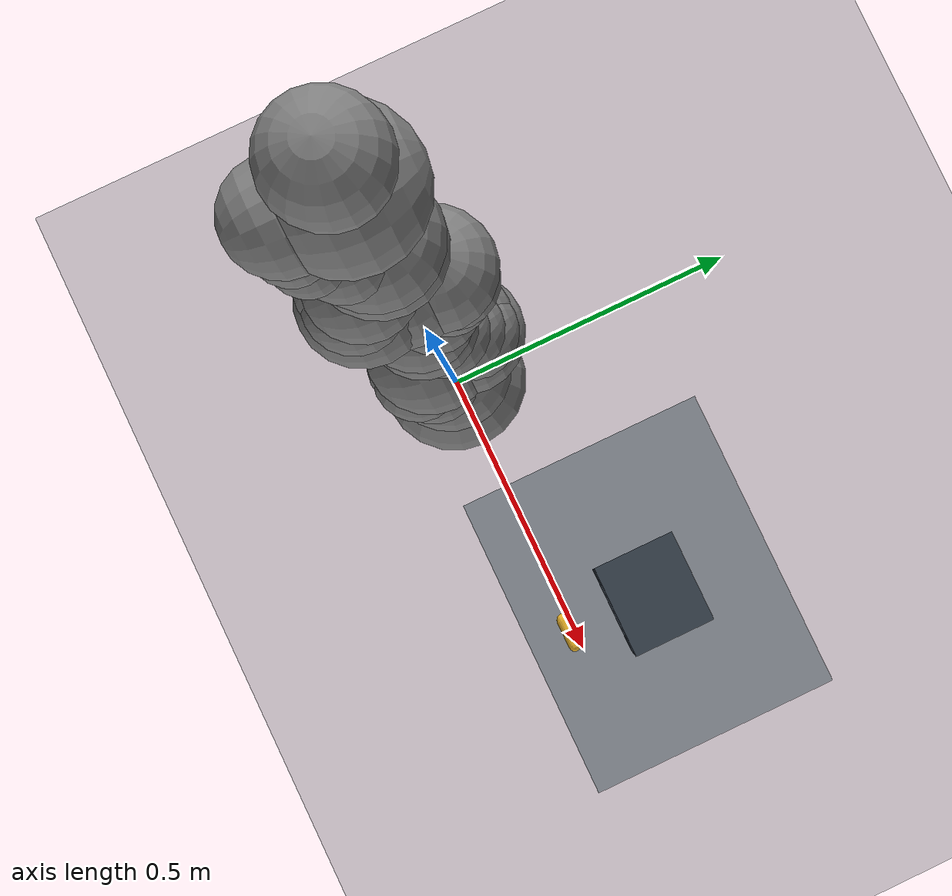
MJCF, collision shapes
<mujoco model="kuka_iiwa_14_window">
  <include file="iiwa14.xml" />
  <visual>
    <global offwidth="800" offheight="600" />
    <headlight diffuse="0.75 0.75 0.75" ambient="0.35 0.35 0.35" specular="0 0 0" />
  </visual>
  <worldbody>
    <light pos="0.35 -0.2 1.45" dir="0.2 0.1 -1" directional="true" />
    <geom name="floor" type="plane" size="0 0 0.05" rgba="0.24 0.26 0.29 1" />
    <geom name="work_surface" type="box" pos="0.45 0.12 0.33" size="0.22 0.18 0.08" mass="0" contype="1" conaffinity="3" friction="1 0.1 0.01" rgba="0.50 0.52 0.55 1" />
    <geom name="window_frame_left" type="box" pos="0.40 0.12 0.50" size="0.012 0.055 0.065" mass="0" contype="1" conaffinity="3" rgba="0.20 0.24 0.28 1" />
    <geom name="window_frame_right" type="box" pos="0.50 0.069 0.50" size="0.012 0.004 0.065" mass="0" contype="1" conaffinity="3" rgba="0.20 0.24 0.28 1" />
    <geom name="window_frame_right_back" type="box" pos="0.50 0.171 0.50" size="0.012 0.004 0.065" mass="0" contype="1" conaffinity="3" rgba="0.20 0.24 0.28 1" />
    <geom name="window_frame_top" type="box" pos="0.45 0.12 0.565" size="0.062 0.055 0.012" mass="0" contype="1" conaffinity="3" rgba="0.20 0.24 0.28 1" />
    <geom name="window_frame_bottom" type="box" pos="0.45 0.12 0.435" size="0.062 0.055 0.012" mass="0" contype="1" conaffinity="3" rgba="0.20 0.24 0.28 1" />
    <body name="window" pos="0.45 0.12 0.50" gravcomp="1">
      <joint name="window_slide" type="slide" axis="1 0 0" range="0 0.10" damping="0.25" frictionloss="0.02" />
      <geom name="window_panel" type="box" size="0.035 0.045 0.052" mass="0.06" conaffinity="2" friction="0.8 0.08 0.008" rgba="0.12 0.58 0.92 0.45" />
      <body name="window_handle" pos="0 -0.12 0">
        <geom name="window_handle_geom" type="capsule" fromto="-0.018 0 0 0.018 0 0" size="0.009" mass="0.015" conaffinity="2" friction="1.0 0.08 0.008" rgba="0.92 0.70 0.16 1" />
        <site name="window_handle_site" size="0.004" rgba="1 1 1 0" />
      </body>
    </body>
    <body name="evidence_target" pos="0.45 0.10 0.50" />
    <camera name="evidence" mode="targetbody" target="evidence_target" pos="0.86 -0.56 0.73" fovy="38" />
  </worldbody>
</mujoco>

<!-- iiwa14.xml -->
<mujoco model="iiwa14">
  <compiler angle="radian" meshdir="assets" autolimits="true"/>

  <option integrator="implicitfast"/>

  <default>
    <default class="iiwa">
      <material specular="0.5" shininess="0.25"/>
      <joint axis="0 0 1"/>
      <general gaintype="fixed" biastype="affine" gainprm="2000" biasprm="0 -2000 -200"/>
      <default class="joint1">
        <joint range="-2.96706 2.96706"/>
        <general ctrlrange="-2.96706 2.96706"/>
        <default class="joint2">
          <joint range="-2.0944 2.0944"/>
          <general ctrlrange="-2.0944 2.0944"/>
        </default>
      </default>
      <default class="joint3">
        <joint range="-3.05433 3.05433"/>
        <general ctrlrange="-3.05433 3.05433"/>
      </default>
      <default class="visual">
        <geom type="mesh" contype="0" conaffinity="0" group="2" material="gray"/>
      </default>
      <default class="collision">
        <geom group="3"/>
      </default>
      <site size="0.001" rgba="1 0 0 1" group="4"/>
    </default>
  </default>

  <asset>
    <material class="iiwa" name="gray" rgba="0.4 0.4 0.4 1"/>
    <material class="iiwa" name="light_gray" rgba="0.6 0.6 0.6 1"/>
    <material class="iiwa" name="black" rgba="0 0 0 1"/>
    <material class="iiwa" name="orange" rgba="1 0.423529 0.0392157 1"/>

    <mesh file="link_0.obj"/>
    <mesh file="link_1.obj"/>
    <mesh file="link_2_orange.obj"/>
    <mesh file="link_2_grey.obj"/>
    <mesh file="link_3.obj"/>
    <mesh file="band.obj"/>
    <mesh file="kuka.obj"/>
    <mesh file="link_4_orange.obj"/>
    <mesh file="link_4_grey.obj"/>
    <mesh file="link_5.obj"/>
    <mesh file="link_6_orange.obj"/>
    <mesh file="link_6_grey.obj"/>
    <mesh file="link_7.obj"/>
  </asset>

  <worldbody>
    <light name="top" pos="0 0 2" mode="trackcom"/>
    <body name="base" childclass="iiwa">
      <inertial mass="5" pos="-0.1 0 0.07" diaginertia="0.05 0.06 0.03"/>
      <geom class="visual" mesh="link_0"/>
      <geom class="collision" size="0.12" pos="0 0 0.03"/>
      <geom class="collision" size="0.08" pos="-0.08 0 0.103"/>
      <geom class="collision" size="0.08" pos="-0.08 0 0.04"/>
      <geom class="collision" size="0.1" pos="0 0 0.14"/>
      <body name="link1" pos="0 0 0.1575">
        <inertial mass="5.76" pos="0 -0.03 0.12" diaginertia="0.0333 0.033 0.0123"/>
        <joint name="joint1" class="joint1"/>
        <geom class="visual" mesh="link_1"/>
        <geom class="collision" size="0.08" pos="0 0 -0.0005"/>
        <geom class="collision" size="0.075" pos="0.01 -0.025 0.0425"/>
        <geom class="collision" size="0.075" pos="-0.01 -0.025 0.0425"/>
        <geom class="collision" size="0.07" pos="0.01 -0.045 0.1025"/>
        <geom class="collision" size="0.07" pos="-0.01 -0.045 0.1025"/>
        <body name="link2" pos="0 0 0.2025" quat="0 0 1 1">
          <inertial mass="6.35" pos="0.0003 0.059 0.042" diaginertia="0.0305 0.0304 0.011" quat="0 0 1 1"/>
          <joint name="joint2" class="joint2"/>
          <geom class="visual" material="orange" mesh="link_2_orange"/>
          <geom class="visual" mesh="link_2_grey"/>
          <geom class="collision" size="0.095" pos="0 0 -0.01"/>
          <geom class="collision" size="0.09" pos="0 0 0.045"/>
          <geom class="collision" size="0.07" pos="-0.01 0.04 0.054"/>
          <geom class="collision" size="0.065" pos="-0.01 0.09 0.04"/>
          <geom class="collision" size="0.065" pos="-0.01 0.13 0.02"/>
          <geom class="collision" size="0.07" pos="0.01 0.04 0.054"/>
          <geom class="collision" size="0.065" pos="0.01 0.09 0.04"/>
          <geom class="collision" size="0.065" pos="0.01 0.13 0.02"/>
          <geom class="collision" size="0.075" pos="0 0.18 0"/>
          <body name="link3" pos="0 0.2045 0" quat="0 0 1 1">
            <inertial mass="3.5" pos="0 0.03 0.13" diaginertia="0.025 0.0238 0.0076"/>
            <joint name="joint3" class="joint1"/>
            <geom class="visual" mesh="link_3"/>
            <geom class="visual" material="light_gray" mesh="band"/>
            <geom class="visual" material="black" mesh="kuka"/>
            <geom class="collision" size="0.075" pos="0 0 0.0355"/>
            <geom class="collision" size="0.06" pos="0.01 0.023 0.0855"/>
            <geom class="collision" size="0.055" pos="0.01 0.048 0.1255"/>
            <geom class="collision" size="0.06" pos="0.01 0.056 0.1755"/>
            <geom class="collision" size="0.06" pos="-0.01 0.023 0.0855"/>
            <geom class="collision" size="0.055" pos="-0.01 0.048 0.1255"/>
            <geom class="collision" size="0.06" pos="-0.01 0.056 0.1755"/>
            <geom class="collision" size="0.075" pos="0 0.045 0.2155"/>
            <geom class="collision" size="0.075" pos="0 0 0.2155"/>
            <body name="link4" pos="0 0 0.2155" quat="1 1 0 0">
              <inertial mass="3.5" pos="0 0.067 0.034" diaginertia="0.017 0.0164 0.006" quat="1 1 0 0"/>
              <joint name="joint4" class="joint2"/>
              <geom class="visual" material="orange" mesh="link_4_orange"/>
              <geom class="visual" mesh="link_4_grey"/>
              <geom class="collision" size="0.078" pos="0 0.01 0.046"/>
              <geom class="collision" size="0.06" pos="0.01 0.06 0.052"/>
              <geom class="collision" size="0.065" pos="0.01 0.12 0.034"/>
              <geom class="collision" size="0.06" pos="-0.01 0.06 0.052"/>
              <geom class="collision" size="0.065" pos="-0.01 0.12 0.034"/>
              <geom class="collision" size="0.075" pos="0 0.184 0"/>
              <body name="link5" pos="0 0.1845 0" quat="0 0 1 1">
                <inertial mass="3.5" pos="0.0001 0.021 0.076" diaginertia="0.01 0.0087 0.00449"/>
                <joint name="joint5" class="joint1"/>
                <geom class="visual" mesh="link_5"/>
                <geom class="visual" material="light_gray" mesh="band"/>
                <geom class="visual" material="black" mesh="kuka"/>
                <geom class="collision" size="0.075" pos="0 0 0.0335"/>
                <geom class="collision" size="0.05" pos="-0.012 0.031 0.0755"/>
                <geom class="collision" size="0.05" pos="0.012 0.031 0.0755"/>
                <geom class="collision" size="0.04" pos="-0.012 0.06 0.1155"/>
                <geom class="collision" size="0.04" pos="0.012 0.06 0.1155"/>
                <geom class="collision" size="0.04" pos="-0.01 0.065 0.1655"/>
                <geom class="collision" size="0.04" pos="0.01 0.065 0.1655"/>
                <geom class="collision" size="0.035" pos="-0.012 0.065 0.1855"/>
                <geom class="collision" size="0.035" pos="0.012 0.065 0.1855"/>
                <body name="link6" pos="0 0 0.2155" quat="1 1 0 0">
                  <inertial mass="1.8" pos="0 0.0006 0.0004" diaginertia="0.0049 0.0047 0.0036" quat="1 1 0 0"/>
                  <joint name="joint6" class="joint2"/>
                  <geom class="visual" material="orange" mesh="link_6_orange"/>
                  <geom class="visual" mesh="link_6_grey"/>
                  <geom class="collision" size="0.055" pos="0 0 -0.059"/>
                  <geom class="collision" size="0.065" pos="0 -0.03 0.011"/>
                  <geom class="collision" size="0.08"/>
                  <body name="link7" pos="0 0.081 0" quat="0 0 1 1">
                    <inertial mass="1.2" pos="0 0 0.02" diaginertia="0.001 0.001 0.001"/>
                    <joint name="joint7" class="joint3"/>
                    <geom class="visual" mesh="link_7"/>
                    <geom name="link7_contact_geom" class="collision" size="0.06" pos="0 0 0.001"/>
                    <site pos="0 0 0.045" name="attachment_site"/>
                  </body>
                </body>
              </body>
            </body>
          </body>
        </body>
      </body>
    </body>
  </worldbody>

  <contact>
    <exclude body1="base" body2="link1"/>
    <exclude body1="base" body2="link2"/>
    <exclude body1="base" body2="link3"/>
    <exclude body1="link1" body2="link3"/>
    <exclude body1="link3" body2="link5"/>
    <exclude body1="link4" body2="link7"/>
    <exclude body1="link5" body2="link7"/>
  </contact>

  <actuator>
    <general name="actuator1" joint="joint1" class="joint1"/>
    <general name="actuator2" joint="joint2" class="joint2"/>
    <general name="actuator3" joint="joint3" class="joint1"/>
    <general name="actuator4" joint="joint4" class="joint2"/>
    <general name="actuator5" joint="joint5" class="joint1"/>
    <general name="actuator6" joint="joint6" class="joint2"/>
    <general name="actuator7" joint="joint7" class="joint3"/>
  </actuator>

  <keyframe>
    <key name="home" qpos="0 0.785398 0 -1.5708 0 0 0" ctrl="0 0.785398 0 -1.5708 0 0 0"/>
  </keyframe>
</mujoco>
